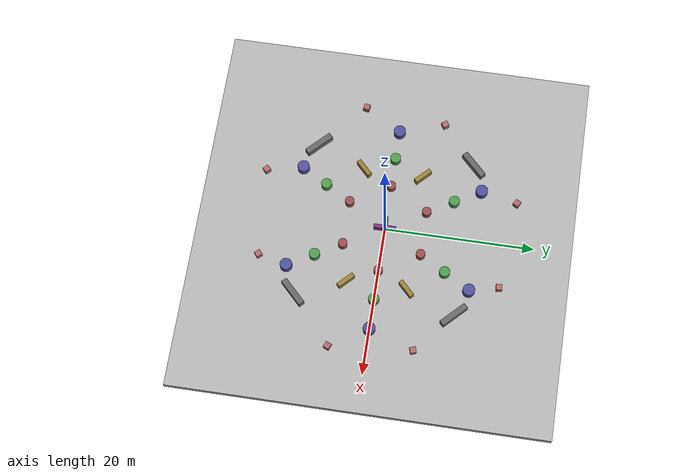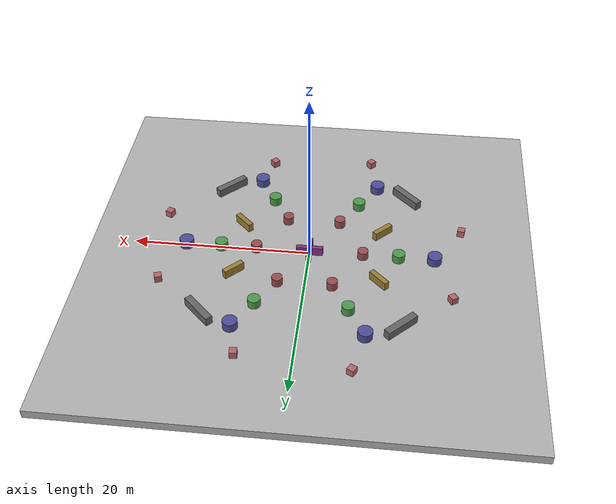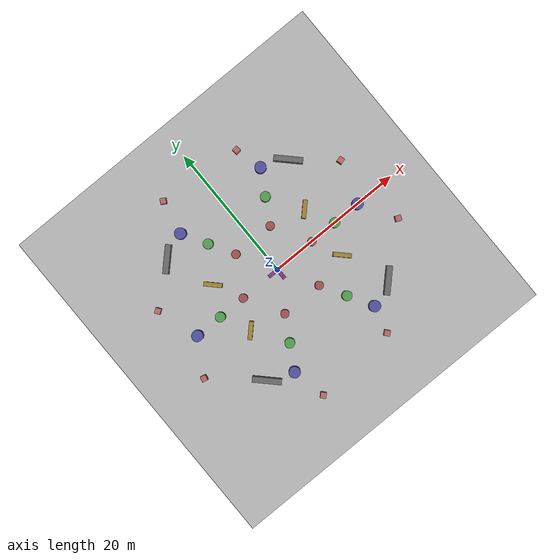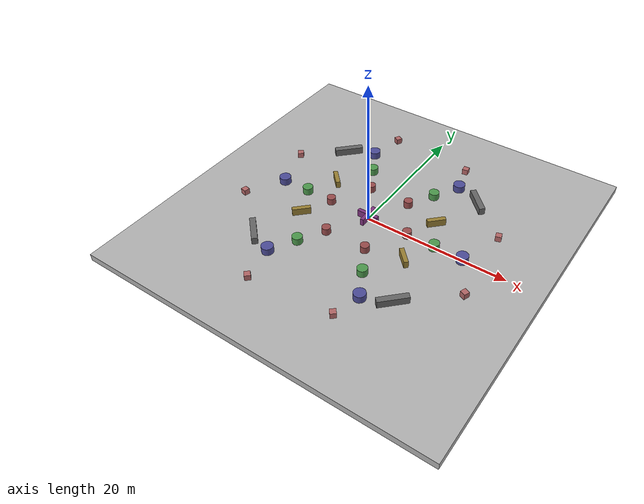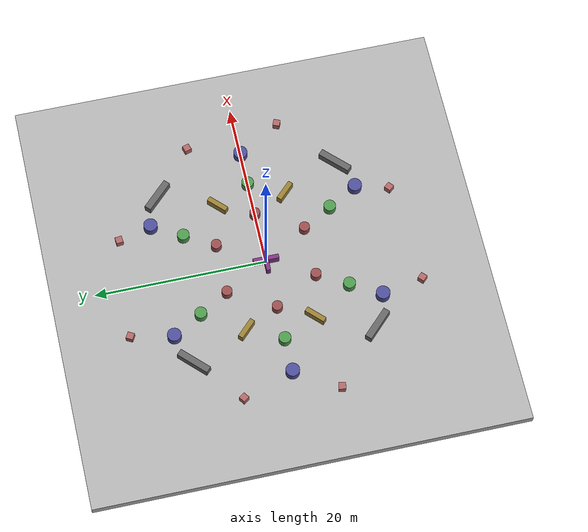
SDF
<?xml version="1.0" ?>
<sdf version="1.9">
  <world name='pillar_forest'>
    <physics name='1ms' type='ignored'>
      <max_step_size>0.001</max_step_size>
      <real_time_factor>1</real_time_factor>
    </physics>

    <plugin filename="gz-sim-physics-system" name="gz::sim::systems::Physics"/>
    <plugin filename="gz-sim-user-commands-system" name="gz::sim::systems::UserCommands"/>
    <plugin filename="gz-sim-scene-broadcaster-system" name="gz::sim::systems::SceneBroadcaster"/>
    <plugin filename="gz-sim-sensors-system" name="gz::sim::systems::Sensors">
      <render_engine>ogre2</render_engine>
    </plugin>
    <plugin filename="gz-sim-imu-system" name="gz::sim::systems::Imu"/>

    <light name='sun' type='directional'>
      <pose>0 0 10 0 -0 0</pose>
      <cast_shadows>true</cast_shadows>
      <intensity>1</intensity>
      <direction>-0.5 0.1 -0.9</direction>
      <diffuse>0.8 0.8 0.8 1</diffuse>
      <specular>0.2 0.2 0.2 1</specular>
      <attenuation>
        <range>1000</range>
        <linear>0.01</linear>
        <constant>0.90000000000000002</constant>
        <quadratic>0.001</quadratic>
      </attenuation>
      <spot>
        <inner_angle>0</inner_angle>
        <outer_angle>0</outer_angle>
        <falloff>0</falloff>
      </spot>
    </light>

    <gui fullscreen='0'>
      <camera name='user_camera'>
        <pose>10 -15 20 0 0.5 2.8</pose>
        <view_controller>orbit</view_controller>
      </camera>
    </gui>

    <scene>
      <ambient>0.4 0.4 0.4 1</ambient>
      <background>0.7 0.7 0.7 1</background>
      <shadows>true</shadows>
    </scene>

    <gravity>0 0 -9.8</gravity>
    <magnetic_field>6e-6 2.3e-5 -4.2e-5</magnetic_field>
    <atmosphere type='adiabatic'/>

    <!-- Outer boundary -->
    <model name='perimeter'>
      <static>true</static>
      <pose>0 0 -0.5 0 -0 0</pose>
      <link name='link'>
        <visual name='visual'>
          <geometry>
            <box>
              <size>50 50 1</size>
            </box>
          </geometry>
          <material>
            <ambient>0.5 0.5 0.5 1</ambient>
            <diffuse>0.7 0.7 0.7 1</diffuse>
          </material>
        </visual>
        <collision name='collision'>
          <geometry>
            <box>
              <size>50 50 1</size>
            </box>
          </geometry>
        </collision>
      </link>
    </model>

    <!-- Cylindrical pillars - irregular hexagonal-ish grid pattern -->
    <!-- Minimum spacing = 1.5m (3 robot widths of 0.5m) -->

    <!-- Inner hexagonal ring at radius ~6m -->
    <model name='cyl_1'>
      <static>true</static>
      <pose>6 0 0.5 0 0 0</pose>
      <link name='link'>
        <visual name='visual'>
          <geometry><cylinder><radius>0.6</radius><length>1</length></cylinder></geometry>
          <material><ambient>0.5 0.2 0.2 1</ambient><diffuse>0.6 0.3 0.3 1</diffuse></material>
        </visual>
        <collision name='collision'>
          <geometry><cylinder><radius>0.6</radius><length>1</length></cylinder></geometry>
        </collision>
      </link>
    </model>
    <model name='cyl_2'>
      <static>true</static>
      <pose>3 5.2 0.5 0 0 0</pose>
      <link name='link'>
        <visual name='visual'>
          <geometry><cylinder><radius>0.6</radius><length>1</length></cylinder></geometry>
          <material><ambient>0.5 0.2 0.2 1</ambient><diffuse>0.6 0.3 0.3 1</diffuse></material>
        </visual>
        <collision name='collision'>
          <geometry><cylinder><radius>0.6</radius><length>1</length></cylinder></geometry>
        </collision>
      </link>
    </model>
    <model name='cyl_3'>
      <static>true</static>
      <pose>-3 5.2 0.5 0 0 0</pose>
      <link name='link'>
        <visual name='visual'>
          <geometry><cylinder><radius>0.6</radius><length>1</length></cylinder></geometry>
          <material><ambient>0.5 0.2 0.2 1</ambient><diffuse>0.6 0.3 0.3 1</diffuse></material>
        </visual>
        <collision name='collision'>
          <geometry><cylinder><radius>0.6</radius><length>1</length></cylinder></geometry>
        </collision>
      </link>
    </model>
    <model name='cyl_4'>
      <static>true</static>
      <pose>-6 0 0.5 0 0 0</pose>
      <link name='link'>
        <visual name='visual'>
          <geometry><cylinder><radius>0.6</radius><length>1</length></cylinder></geometry>
          <material><ambient>0.5 0.2 0.2 1</ambient><diffuse>0.6 0.3 0.3 1</diffuse></material>
        </visual>
        <collision name='collision'>
          <geometry><cylinder><radius>0.6</radius><length>1</length></cylinder></geometry>
        </collision>
      </link>
    </model>
    <model name='cyl_5'>
      <static>true</static>
      <pose>-3 -5.2 0.5 0 0 0</pose>
      <link name='link'>
        <visual name='visual'>
          <geometry><cylinder><radius>0.6</radius><length>1</length></cylinder></geometry>
          <material><ambient>0.5 0.2 0.2 1</ambient><diffuse>0.6 0.3 0.3 1</diffuse></material>
        </visual>
        <collision name='collision'>
          <geometry><cylinder><radius>0.6</radius><length>1</length></cylinder></geometry>
        </collision>
      </link>
    </model>
    <model name='cyl_6'>
      <static>true</static>
      <pose>3 -5.2 0.5 0 0 0</pose>
      <link name='link'>
        <visual name='visual'>
          <geometry><cylinder><radius>0.6</radius><length>1</length></cylinder></geometry>
          <material><ambient>0.5 0.2 0.2 1</ambient><diffuse>0.6 0.3 0.3 1</diffuse></material>
        </visual>
        <collision name='collision'>
          <geometry><cylinder><radius>0.6</radius><length>1</length></cylinder></geometry>
        </collision>
      </link>
    </model>

    <!-- Second ring at radius ~10m -->
    <model name='cyl_7'>
      <static>true</static>
      <pose>10 0 0.5 0 0 0</pose>
      <link name='link'>
        <visual name='visual'>
          <geometry><cylinder><radius>0.7</radius><length>1</length></cylinder></geometry>
          <material><ambient>0.2 0.5 0.2 1</ambient><diffuse>0.3 0.6 0.3 1</diffuse></material>
        </visual>
        <collision name='collision'>
          <geometry><cylinder><radius>0.7</radius><length>1</length></cylinder></geometry>
        </collision>
      </link>
    </model>
    <model name='cyl_8'>
      <static>true</static>
      <pose>5 8.66 0.5 0 0 0</pose>
      <link name='link'>
        <visual name='visual'>
          <geometry><cylinder><radius>0.7</radius><length>1</length></cylinder></geometry>
          <material><ambient>0.2 0.5 0.2 1</ambient><diffuse>0.3 0.6 0.3 1</diffuse></material>
        </visual>
        <collision name='collision'>
          <geometry><cylinder><radius>0.7</radius><length>1</length></cylinder></geometry>
        </collision>
      </link>
    </model>
    <model name='cyl_9'>
      <static>true</static>
      <pose>-5 8.66 0.5 0 0 0</pose>
      <link name='link'>
        <visual name='visual'>
          <geometry><cylinder><radius>0.7</radius><length>1</length></cylinder></geometry>
          <material><ambient>0.2 0.5 0.2 1</ambient><diffuse>0.3 0.6 0.3 1</diffuse></material>
        </visual>
        <collision name='collision'>
          <geometry><cylinder><radius>0.7</radius><length>1</length></cylinder></geometry>
        </collision>
      </link>
    </model>
    <model name='cyl_10'>
      <static>true</static>
      <pose>-10 0 0.5 0 0 0</pose>
      <link name='link'>
        <visual name='visual'>
          <geometry><cylinder><radius>0.7</radius><length>1</length></cylinder></geometry>
          <material><ambient>0.2 0.5 0.2 1</ambient><diffuse>0.3 0.6 0.3 1</diffuse></material>
        </visual>
        <collision name='collision'>
          <geometry><cylinder><radius>0.7</radius><length>1</length></cylinder></geometry>
        </collision>
      </link>
    </model>
    <model name='cyl_11'>
      <static>true</static>
      <pose>-5 -8.66 0.5 0 0 0</pose>
      <link name='link'>
        <visual name='visual'>
          <geometry><cylinder><radius>0.7</radius><length>1</length></cylinder></geometry>
          <material><ambient>0.2 0.5 0.2 1</ambient><diffuse>0.3 0.6 0.3 1</diffuse></material>
        </visual>
        <collision name='collision'>
          <geometry><cylinder><radius>0.7</radius><length>1</length></cylinder></geometry>
        </collision>
      </link>
    </model>
    <model name='cyl_12'>
      <static>true</static>
      <pose>5 -8.66 0.5 0 0 0</pose>
      <link name='link'>
        <visual name='visual'>
          <geometry><cylinder><radius>0.7</radius><length>1</length></cylinder></geometry>
          <material><ambient>0.2 0.5 0.2 1</ambient><diffuse>0.3 0.6 0.3 1</diffuse></material>
        </visual>
        <collision name='collision'>
          <geometry><cylinder><radius>0.7</radius><length>1</length></cylinder></geometry>
        </collision>
      </link>
    </model>

    <!-- Third ring at radius ~14m -->
    <model name='cyl_13'>
      <static>true</static>
      <pose>14 0 0.5 0 0 0</pose>
      <link name='link'>
        <visual name='visual'>
          <geometry><cylinder><radius>0.8</radius><length>1</length></cylinder></geometry>
          <material><ambient>0.2 0.2 0.5 1</ambient><diffuse>0.3 0.3 0.6 1</diffuse></material>
        </visual>
        <collision name='collision'>
          <geometry><cylinder><radius>0.8</radius><length>1</length></cylinder></geometry>
        </collision>
      </link>
    </model>
    <model name='cyl_14'>
      <static>true</static>
      <pose>7 12.12 0.5 0 0 0</pose>
      <link name='link'>
        <visual name='visual'>
          <geometry><cylinder><radius>0.8</radius><length>1</length></cylinder></geometry>
          <material><ambient>0.2 0.2 0.5 1</ambient><diffuse>0.3 0.3 0.6 1</diffuse></material>
        </visual>
        <collision name='collision'>
          <geometry><cylinder><radius>0.8</radius><length>1</length></cylinder></geometry>
        </collision>
      </link>
    </model>
    <model name='cyl_15'>
      <static>true</static>
      <pose>-7 12.12 0.5 0 0 0</pose>
      <link name='link'>
        <visual name='visual'>
          <geometry><cylinder><radius>0.8</radius><length>1</length></cylinder></geometry>
          <material><ambient>0.2 0.2 0.5 1</ambient><diffuse>0.3 0.3 0.6 1</diffuse></material>
        </visual>
        <collision name='collision'>
          <geometry><cylinder><radius>0.8</radius><length>1</length></cylinder></geometry>
        </collision>
      </link>
    </model>
    <model name='cyl_16'>
      <static>true</static>
      <pose>-14 0 0.5 0 0 0</pose>
      <link name='link'>
        <visual name='visual'>
          <geometry><cylinder><radius>0.8</radius><length>1</length></cylinder></geometry>
          <material><ambient>0.2 0.2 0.5 1</ambient><diffuse>0.3 0.3 0.6 1</diffuse></material>
        </visual>
        <collision name='collision'>
          <geometry><cylinder><radius>0.8</radius><length>1</length></cylinder></geometry>
        </collision>
      </link>
    </model>
    <model name='cyl_17'>
      <static>true</static>
      <pose>-7 -12.12 0.5 0 0 0</pose>
      <link name='link'>
        <visual name='visual'>
          <geometry><cylinder><radius>0.8</radius><length>1</length></cylinder></geometry>
          <material><ambient>0.2 0.2 0.5 1</ambient><diffuse>0.3 0.3 0.6 1</diffuse></material>
        </visual>
        <collision name='collision'>
          <geometry><cylinder><radius>0.8</radius><length>1</length></cylinder></geometry>
        </collision>
      </link>
    </model>
    <model name='cyl_18'>
      <static>true</static>
      <pose>7 -12.12 0.5 0 0 0</pose>
      <link name='link'>
        <visual name='visual'>
          <geometry><cylinder><radius>0.8</radius><length>1</length></cylinder></geometry>
          <material><ambient>0.2 0.2 0.5 1</ambient><diffuse>0.3 0.3 0.6 1</diffuse></material>
        </visual>
        <collision name='collision'>
          <geometry><cylinder><radius>0.8</radius><length>1</length></cylinder></geometry>
        </collision>
      </link>
    </model>

    <!-- L-shaped obstacles between the inner and middle rings -->
    <model name='lshape_1'>
      <static>true</static>
      <pose>8 4 0.5 0 0 0.785</pose>
      <link name='link'>
        <visual name='visual'>
          <geometry><box><size>2.5 0.6 1</size></box></geometry>
          <material><ambient>0.5 0.4 0.1 1</ambient><diffuse>0.6 0.5 0.2 1</diffuse></material>
        </visual>
        <collision name='collision'>
          <geometry><box><size>2.5 0.6 1</size></box></geometry>
        </collision>
      </link>
    </model>
    <model name='lshape_2'>
      <static>true</static>
      <pose>-8 4 0.5 0 0 -0.785</pose>
      <link name='link'>
        <visual name='visual'>
          <geometry><box><size>2.5 0.6 1</size></box></geometry>
          <material><ambient>0.5 0.4 0.1 1</ambient><diffuse>0.6 0.5 0.2 1</diffuse></material>
        </visual>
        <collision name='collision'>
          <geometry><box><size>2.5 0.6 1</size></box></geometry>
        </collision>
      </link>
    </model>
    <model name='lshape_3'>
      <static>true</static>
      <pose>8 -4 0.5 0 0 -0.785</pose>
      <link name='link'>
        <visual name='visual'>
          <geometry><box><size>2.5 0.6 1</size></box></geometry>
          <material><ambient>0.5 0.4 0.1 1</ambient><diffuse>0.6 0.5 0.2 1</diffuse></material>
        </visual>
        <collision name='collision'>
          <geometry><box><size>2.5 0.6 1</size></box></geometry>
        </collision>
      </link>
    </model>
    <model name='lshape_4'>
      <static>true</static>
      <pose>-8 -4 0.5 0 0 0.785</pose>
      <link name='link'>
        <visual name='visual'>
          <geometry><box><size>2.5 0.6 1</size></box></geometry>
          <material><ambient>0.5 0.4 0.1 1</ambient><diffuse>0.6 0.5 0.2 1</diffuse></material>
        </visual>
        <collision name='collision'>
          <geometry><box><size>2.5 0.6 1</size></box></geometry>
        </collision>
      </link>
    </model>

    <!-- Narrow corridor segments through the outer ring -->
    <!-- Corridors at 45-degree angles -->
    <model name='corridor_seg_1'>
      <static>true</static>
      <pose>10.6 10.6 0.5 0 0 0.785</pose>
      <link name='link'>
        <visual name='visual'>
          <geometry><box><size>0.8 4 1</size></box></geometry>
          <material><ambient>0.3 0.3 0.3 1</ambient><diffuse>0.4 0.4 0.4 1</diffuse></material>
        </visual>
        <collision name='collision'>
          <geometry><box><size>0.8 4 1</size></box></geometry>
        </collision>
      </link>
    </model>
    <model name='corridor_seg_2'>
      <static>true</static>
      <pose>-10.6 10.6 0.5 0 0 -0.785</pose>
      <link name='link'>
        <visual name='visual'>
          <geometry><box><size>0.8 4 1</size></box></geometry>
          <material><ambient>0.3 0.3 0.3 1</ambient><diffuse>0.4 0.4 0.4 1</diffuse></material>
        </visual>
        <collision name='collision'>
          <geometry><box><size>0.8 4 1</size></box></geometry>
        </collision>
      </link>
    </model>
    <model name='corridor_seg_3'>
      <static>true</static>
      <pose>10.6 -10.6 0.5 0 0 -0.785</pose>
      <link name='link'>
        <visual name='visual'>
          <geometry><box><size>0.8 4 1</size></box></geometry>
          <material><ambient>0.3 0.3 0.3 1</ambient><diffuse>0.4 0.4 0.4 1</diffuse></material>
        </visual>
        <collision name='collision'>
          <geometry><box><size>0.8 4 1</size></box></geometry>
        </collision>
      </link>
    </model>
    <model name='corridor_seg_4'>
      <static>true</static>
      <pose>-10.6 -10.6 0.5 0 0 0.785</pose>
      <link name='link'>
        <visual name='visual'>
          <geometry><box><size>0.8 4 1</size></box></geometry>
          <material><ambient>0.3 0.3 0.3 1</ambient><diffuse>0.4 0.4 0.4 1</diffuse></material>
        </visual>
        <collision name='collision'>
          <geometry><box><size>0.8 4 1</size></box></geometry>
        </collision>
      </link>
    </model>

    <!-- Dense inner obstacles (cross formation) -->
    <model name='cross_h'>
      <static>true</static>
      <pose>0 0 0.5 0 0 0</pose>
      <link name='link'>
        <visual name='visual'>
          <geometry><box><size>3 0.5 1</size></box></geometry>
          <material><ambient>0.4 0.1 0.4 1</ambient><diffuse>0.5 0.2 0.5 1</diffuse></material>
        </visual>
        <collision name='collision'>
          <geometry><box><size>3 0.5 1</size></box></geometry>
        </collision>
      </link>
    </model>
    <model name='cross_v'>
      <static>true</static>
      <pose>0 0 0.5 0 0 0</pose>
      <link name='link'>
        <visual name='visual'>
          <geometry><box><size>0.5 3 1</size></box></geometry>
          <material><ambient>0.4 0.1 0.4 1</ambient><diffuse>0.5 0.2 0.5 1</diffuse></material>
        </visual>
        <collision name='collision'>
          <geometry><box><size>0.5 3 1</size></box></geometry>
        </collision>
      </link>
    </model>

    <!-- Scattered small boxes in the outer zone -->
    <model name='box_s1'>
      <static>true</static>
      <pose>16 6 0.4 0 0 0.3</pose>
      <link name='link'>
        <visual name='visual'>
          <geometry><box><size>0.8 0.8 0.8</size></box></geometry>
          <material><ambient>0.6 0.3 0.3 1</ambient><diffuse>0.7 0.4 0.4 1</diffuse></material>
        </visual>
        <collision name='collision'>
          <geometry><box><size>0.8 0.8 0.8</size></box></geometry>
        </collision>
      </link>
    </model>
    <model name='box_s2'>
      <static>true</static>
      <pose>17 -5 0.4 0 0 -0.4</pose>
      <link name='link'>
        <visual name='visual'>
          <geometry><box><size>0.8 0.8 0.8</size></box></geometry>
          <material><ambient>0.6 0.3 0.3 1</ambient><diffuse>0.7 0.4 0.4 1</diffuse></material>
        </visual>
        <collision name='collision'>
          <geometry><box><size>0.8 0.8 0.8</size></box></geometry>
        </collision>
      </link>
    </model>
    <model name='box_s3'>
      <static>true</static>
      <pose>-16 6 0.4 0 0 0.6</pose>
      <link name='link'>
        <visual name='visual'>
          <geometry><box><size>0.8 0.8 0.8</size></box></geometry>
          <material><ambient>0.6 0.3 0.3 1</ambient><diffuse>0.7 0.4 0.4 1</diffuse></material>
        </visual>
        <collision name='collision'>
          <geometry><box><size>0.8 0.8 0.8</size></box></geometry>
        </collision>
      </link>
    </model>
    <model name='box_s4'>
      <static>true</static>
      <pose>-17 -5 0.4 0 0 -0.2</pose>
      <link name='link'>
        <visual name='visual'>
          <geometry><box><size>0.8 0.8 0.8</size></box></geometry>
          <material><ambient>0.6 0.3 0.3 1</ambient><diffuse>0.7 0.4 0.4 1</diffuse></material>
        </visual>
        <collision name='collision'>
          <geometry><box><size>0.8 0.8 0.8</size></box></geometry>
        </collision>
      </link>
    </model>
    <model name='box_s5'>
      <static>true</static>
      <pose>6 16 0.4 0 0 0.1</pose>
      <link name='link'>
        <visual name='visual'>
          <geometry><box><size>0.8 0.8 0.8</size></box></geometry>
          <material><ambient>0.6 0.3 0.3 1</ambient><diffuse>0.7 0.4 0.4 1</diffuse></material>
        </visual>
        <collision name='collision'>
          <geometry><box><size>0.8 0.8 0.8</size></box></geometry>
        </collision>
      </link>
    </model>
    <model name='box_s6'>
      <static>true</static>
      <pose>-6 17 0.4 0 0 -0.5</pose>
      <link name='link'>
        <visual name='visual'>
          <geometry><box><size>0.8 0.8 0.8</size></box></geometry>
          <material><ambient>0.6 0.3 0.3 1</ambient><diffuse>0.7 0.4 0.4 1</diffuse></material>
        </visual>
        <collision name='collision'>
          <geometry><box><size>0.8 0.8 0.8</size></box></geometry>
        </collision>
      </link>
    </model>
    <model name='box_s7'>
      <static>true</static>
      <pose>6 -16 0.4 0 0 0.7</pose>
      <link name='link'>
        <visual name='visual'>
          <geometry><box><size>0.8 0.8 0.8</size></box></geometry>
          <material><ambient>0.6 0.3 0.3 1</ambient><diffuse>0.7 0.4 0.4 1</diffuse></material>
        </visual>
        <collision name='collision'>
          <geometry><box><size>0.8 0.8 0.8</size></box></geometry>
        </collision>
      </link>
    </model>
    <model name='box_s8'>
      <static>true</static>
      <pose>-6 -17 0.4 0 0 -0.8</pose>
      <link name='link'>
        <visual name='visual'>
          <geometry><box><size>0.8 0.8 0.8</size></box></geometry>
          <material><ambient>0.6 0.3 0.3 1</ambient><diffuse>0.7 0.4 0.4 1</diffuse></material>
        </visual>
        <collision name='collision'>
          <geometry><box><size>0.8 0.8 0.8</size></box></geometry>
        </collision>
      </link>
    </model>

  </world>
</sdf>
